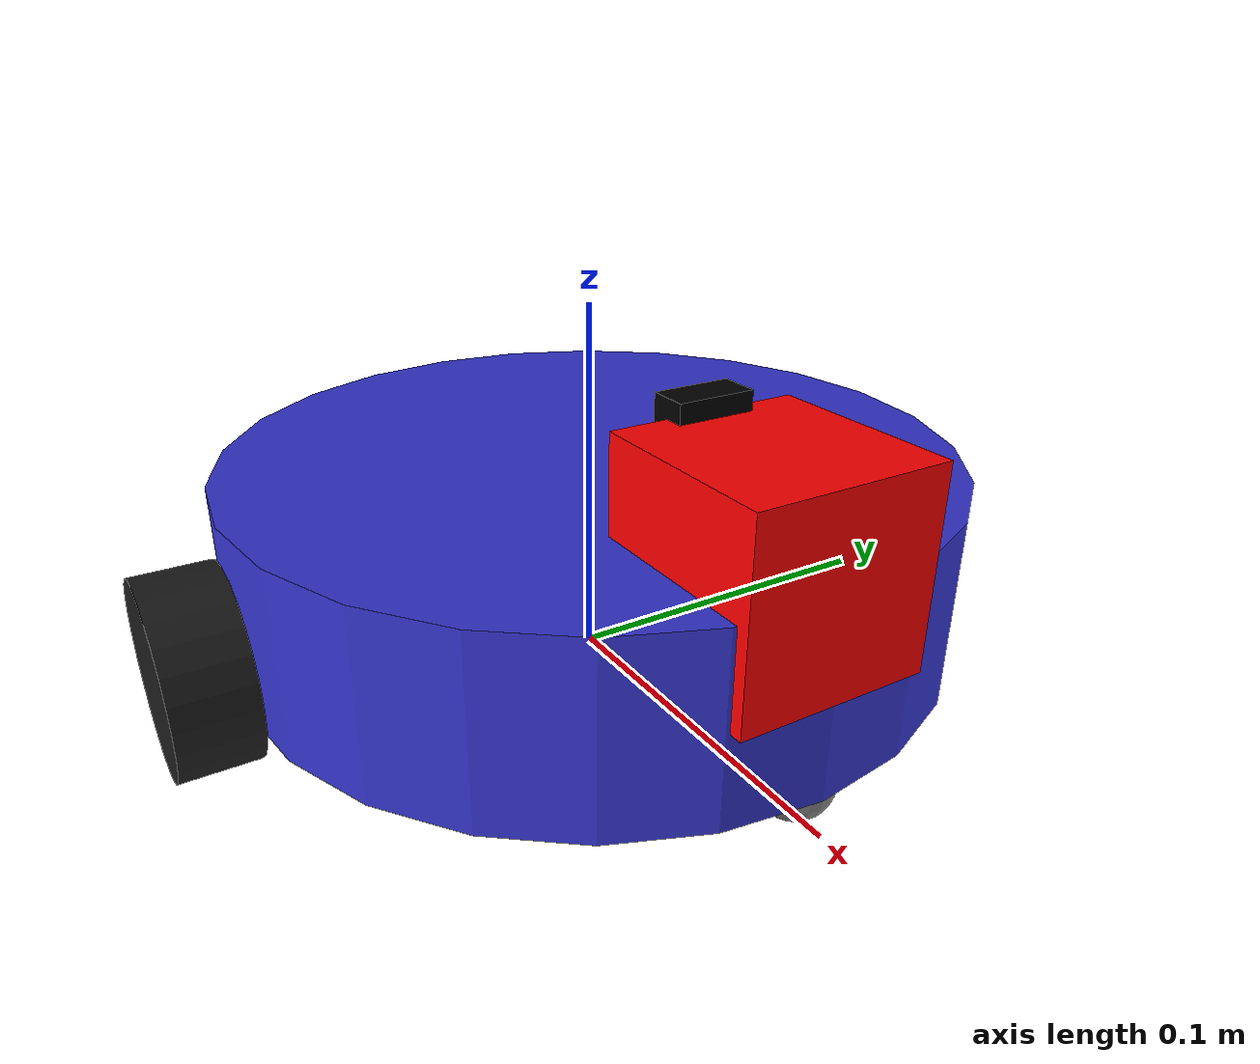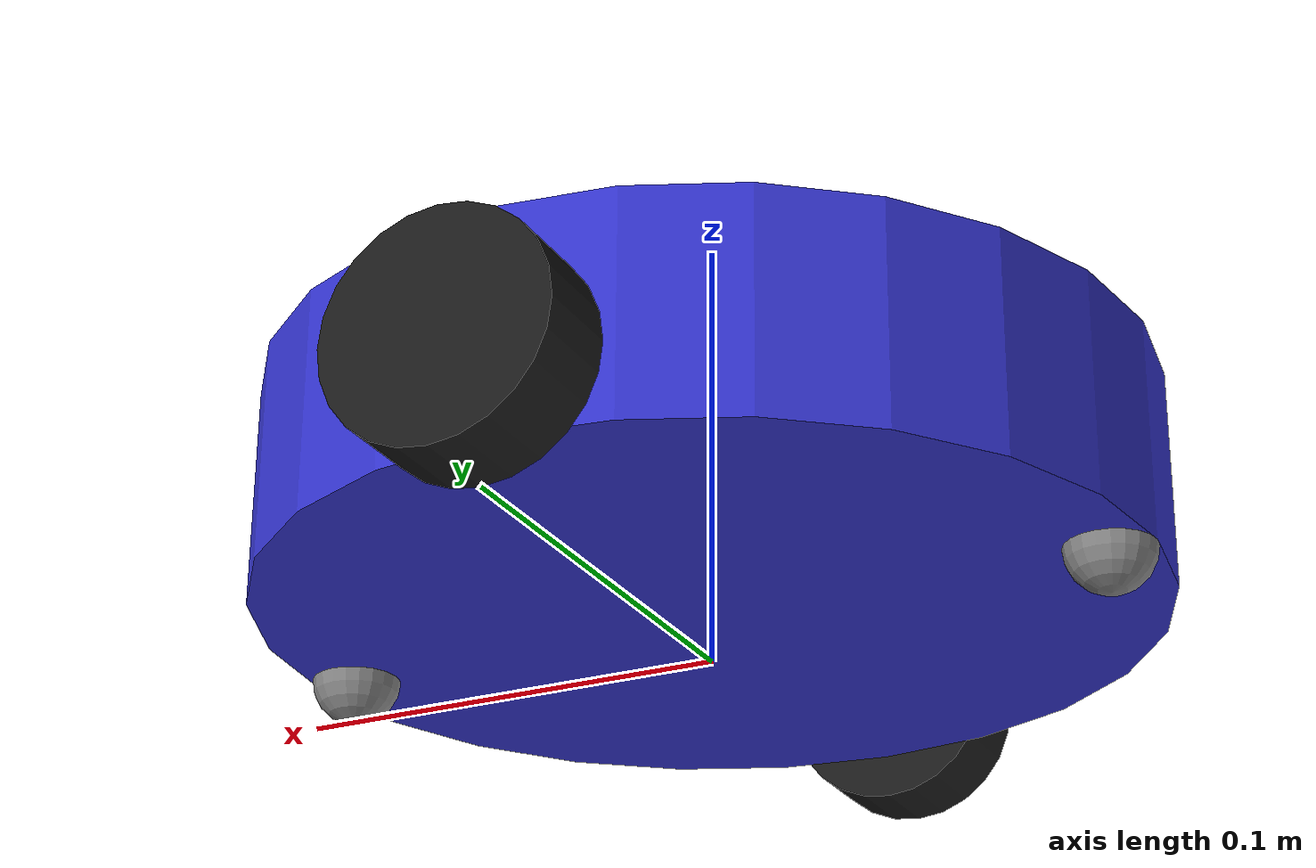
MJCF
<mujoco model="xrobocon_robot">
  <compiler angle="degree" coordinate="local" inertiafromgeom="true"/>
  <option timestep="0.002" gravity="0 0 -9.81"/>

  <default>
    <joint armature="0.01" damping="0.1"/>
    <geom friction="0.8" solimp="0.9 0.95 0.001 0.5 2" solref="0.02 1"/>
    <motor ctrllimited="true" ctrlrange="-1.0 1.0"/>
  </default>

  <worldbody>
    <!-- Main Body (Cylinder) - 半径0.2m → 0.1m -->
    <body name="base_link" pos="0 0 0.035">
      <freejoint/>
      <geom type="cylinder" size="0.1 0.025" rgba="0.2 0.2 0.8 1" mass="2.5"/>

      <!-- Visual Marker for Front -->
      <geom type="box" pos="0.075 0 0.025" size="0.025 0.025 0.025" rgba="1 0 0 1" mass="0.05"/>

      <!-- Left Wheel - 半径0.05m → 0.025m -->
      <body name="left_wheel" pos="0 0.11 -0.01" zaxis="0 1 0">
        <joint name="left_wheel_joint" type="hinge" axis="0 0 1" damping="0.05" armature="0.005"/>
        <geom type="cylinder" size="0.025 0.01" rgba="0.1 0.1 0.1 1" mass="0.5" friction="1.0 0.005 0.0001"/>
      </body>

      <!-- Right Wheel -->
      <body name="right_wheel" pos="0 -0.11 -0.01" zaxis="0 1 0">
        <joint name="right_wheel_joint" type="hinge" axis="0 0 1" damping="0.05" armature="0.005"/>
        <geom type="cylinder" size="0.025 0.01" rgba="0.1 0.1 0.1 1" mass="0.5" friction="1.0 0.005 0.0001"/>
      </body>

      <!-- Caster Wheels (Front/Back for stability) -->
      <body name="front_caster" pos="0.09 0 -0.025">
        <geom type="sphere" size="0.01" rgba="0.5 0.5 0.5 1" mass="0.05" friction="0.1"/>
      </body>
      <body name="back_caster" pos="-0.09 0 -0.025">
        <geom type="sphere" size="0.01" rgba="0.5 0.5 0.5 1" mass="0.05" friction="0.1"/>
      </body>

      <!-- Camera -->
      <body name="camera_link" pos="0.05 0 0.05">
        <geom type="box" size="0.005 0.01 0.005" rgba="0 0 0 1"/>
        <camera name="robot_camera" pos="0 0 0" euler="90 -90 0" fovy="60"/>
      </body>
    </body>
  </worldbody>

  <actuator>
    <motor name="left_motor" joint="left_wheel_joint" gear="50"/>
    <motor name="right_motor" joint="right_wheel_joint" gear="50"/>
  </actuator>
</mujoco>
